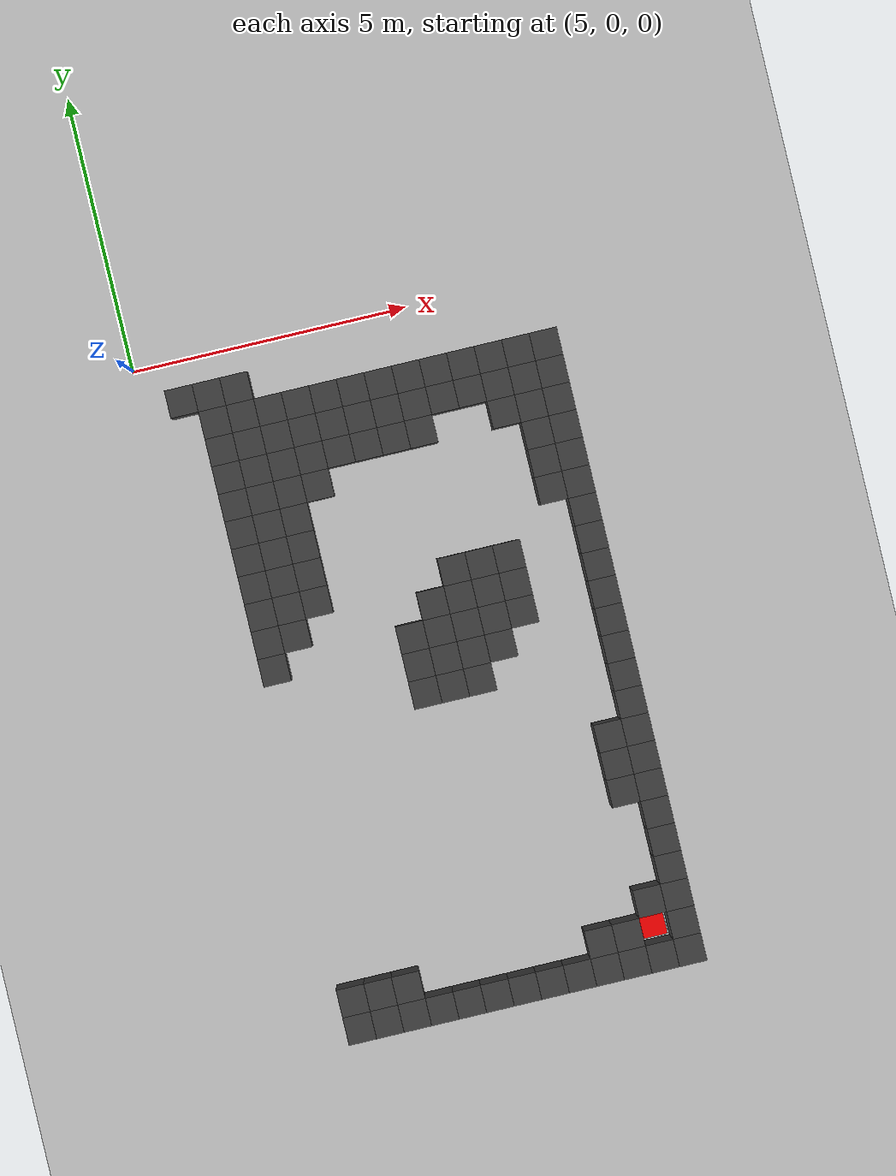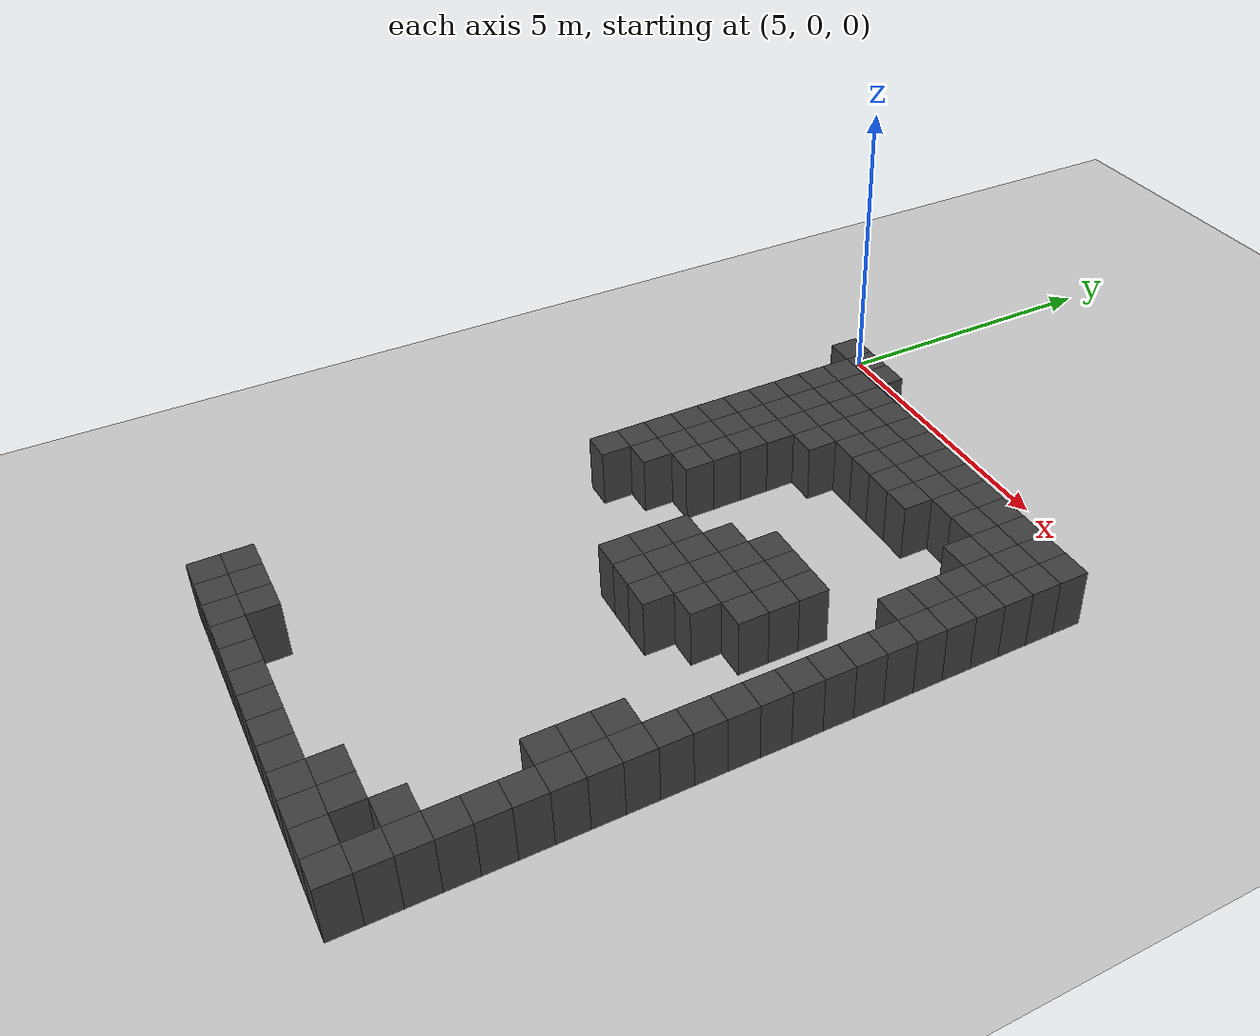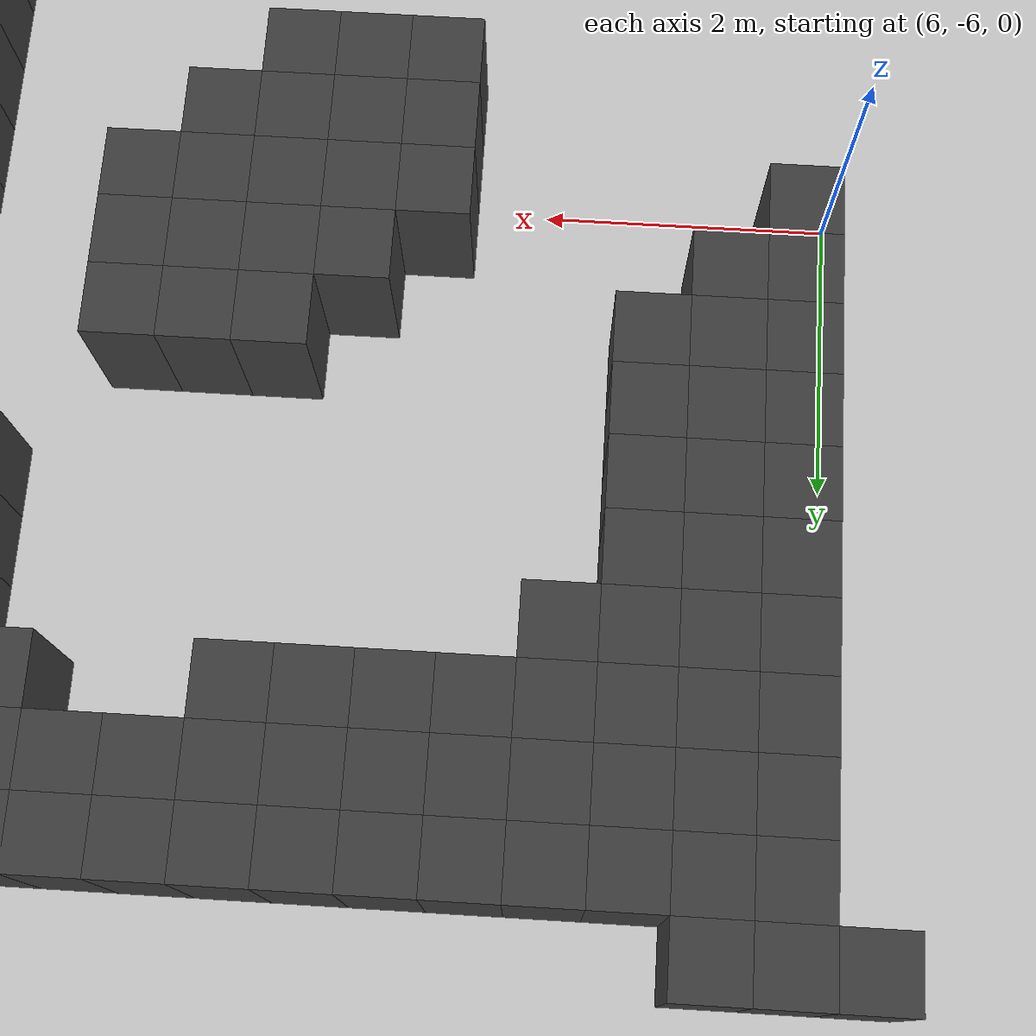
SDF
<sdf version="1.7">
 <world name="map_7972">
  <model name="ground_plane">
   <static>true</static>
   <link name="link">
    <collision name="collision">
     <geometry><plane><normal>0 0 1</normal><size>200 200</size></plane></geometry>
    </collision>
    <visual name="visual">
     <geometry><plane><normal>0 0 1</normal><size>200 200</size></plane></geometry>
     <material><ambient>0.8 0.8 0.8 1</ambient><diffuse>0.8 0.8 0.8 1</diffuse></material>
    </visual>
   </link>
  </model>
  <model name="maze_environment">
   <static>true</static>
   <link name="wall_441">
    <pose>5.750 -0.750 0.500 0 0 0</pose>
    <collision name="col"><geometry><box><size>0.5 0.5 1.0</size></box></geometry></collision>
    <visual name="vis">
     <geometry><box><size>0.5 0.5 1.0</size></box></geometry>
     <material><ambient>0.15 0.15 0.15 1</ambient><diffuse>0.25 0.25 0.25 1</diffuse></material>
    </visual>
   </link>
   <link name="wall_442">
    <pose>6.250 -0.750 0.500 0 0 0</pose>
    <collision name="col"><geometry><box><size>0.5 0.5 1.0</size></box></geometry></collision>
    <visual name="vis">
     <geometry><box><size>0.5 0.5 1.0</size></box></geometry>
     <material><ambient>0.15 0.15 0.15 1</ambient><diffuse>0.25 0.25 0.25 1</diffuse></material>
    </visual>
   </link>
   <link name="wall_443">
    <pose>6.750 -0.750 0.500 0 0 0</pose>
    <collision name="col"><geometry><box><size>0.5 0.5 1.0</size></box></geometry></collision>
    <visual name="vis">
     <geometry><box><size>0.5 0.5 1.0</size></box></geometry>
     <material><ambient>0.15 0.15 0.15 1</ambient><diffuse>0.25 0.25 0.25 1</diffuse></material>
    </visual>
   </link>
   <link name="wall_472">
    <pose>6.250 -1.250 0.500 0 0 0</pose>
    <collision name="col"><geometry><box><size>0.5 0.5 1.0</size></box></geometry></collision>
    <visual name="vis">
     <geometry><box><size>0.5 0.5 1.0</size></box></geometry>
     <material><ambient>0.15 0.15 0.15 1</ambient><diffuse>0.25 0.25 0.25 1</diffuse></material>
    </visual>
   </link>
   <link name="wall_473">
    <pose>6.750 -1.250 0.500 0 0 0</pose>
    <collision name="col"><geometry><box><size>0.5 0.5 1.0</size></box></geometry></collision>
    <visual name="vis">
     <geometry><box><size>0.5 0.5 1.0</size></box></geometry>
     <material><ambient>0.15 0.15 0.15 1</ambient><diffuse>0.25 0.25 0.25 1</diffuse></material>
    </visual>
   </link>
   <link name="wall_474">
    <pose>7.250 -1.250 0.500 0 0 0</pose>
    <collision name="col"><geometry><box><size>0.5 0.5 1.0</size></box></geometry></collision>
    <visual name="vis">
     <geometry><box><size>0.5 0.5 1.0</size></box></geometry>
     <material><ambient>0.15 0.15 0.15 1</ambient><diffuse>0.25 0.25 0.25 1</diffuse></material>
    </visual>
   </link>
   <link name="wall_475">
    <pose>7.750 -1.250 0.500 0 0 0</pose>
    <collision name="col"><geometry><box><size>0.5 0.5 1.0</size></box></geometry></collision>
    <visual name="vis">
     <geometry><box><size>0.5 0.5 1.0</size></box></geometry>
     <material><ambient>0.15 0.15 0.15 1</ambient><diffuse>0.25 0.25 0.25 1</diffuse></material>
    </visual>
   </link>
   <link name="wall_476">
    <pose>8.250 -1.250 0.500 0 0 0</pose>
    <collision name="col"><geometry><box><size>0.5 0.5 1.0</size></box></geometry></collision>
    <visual name="vis">
     <geometry><box><size>0.5 0.5 1.0</size></box></geometry>
     <material><ambient>0.15 0.15 0.15 1</ambient><diffuse>0.25 0.25 0.25 1</diffuse></material>
    </visual>
   </link>
   <link name="wall_477">
    <pose>8.750 -1.250 0.500 0 0 0</pose>
    <collision name="col"><geometry><box><size>0.5 0.5 1.0</size></box></geometry></collision>
    <visual name="vis">
     <geometry><box><size>0.5 0.5 1.0</size></box></geometry>
     <material><ambient>0.15 0.15 0.15 1</ambient><diffuse>0.25 0.25 0.25 1</diffuse></material>
    </visual>
   </link>
   <link name="wall_478">
    <pose>9.250 -1.250 0.500 0 0 0</pose>
    <collision name="col"><geometry><box><size>0.5 0.5 1.0</size></box></geometry></collision>
    <visual name="vis">
     <geometry><box><size>0.5 0.5 1.0</size></box></geometry>
     <material><ambient>0.15 0.15 0.15 1</ambient><diffuse>0.25 0.25 0.25 1</diffuse></material>
    </visual>
   </link>
   <link name="wall_479">
    <pose>9.750 -1.250 0.500 0 0 0</pose>
    <collision name="col"><geometry><box><size>0.5 0.5 1.0</size></box></geometry></collision>
    <visual name="vis">
     <geometry><box><size>0.5 0.5 1.0</size></box></geometry>
     <material><ambient>0.15 0.15 0.15 1</ambient><diffuse>0.25 0.25 0.25 1</diffuse></material>
    </visual>
   </link>
   <link name="wall_480">
    <pose>10.250 -1.250 0.500 0 0 0</pose>
    <collision name="col"><geometry><box><size>0.5 0.5 1.0</size></box></geometry></collision>
    <visual name="vis">
     <geometry><box><size>0.5 0.5 1.0</size></box></geometry>
     <material><ambient>0.15 0.15 0.15 1</ambient><diffuse>0.25 0.25 0.25 1</diffuse></material>
    </visual>
   </link>
   <link name="wall_481">
    <pose>10.750 -1.250 0.500 0 0 0</pose>
    <collision name="col"><geometry><box><size>0.5 0.5 1.0</size></box></geometry></collision>
    <visual name="vis">
     <geometry><box><size>0.5 0.5 1.0</size></box></geometry>
     <material><ambient>0.15 0.15 0.15 1</ambient><diffuse>0.25 0.25 0.25 1</diffuse></material>
    </visual>
   </link>
   <link name="wall_482">
    <pose>11.250 -1.250 0.500 0 0 0</pose>
    <collision name="col"><geometry><box><size>0.5 0.5 1.0</size></box></geometry></collision>
    <visual name="vis">
     <geometry><box><size>0.5 0.5 1.0</size></box></geometry>
     <material><ambient>0.15 0.15 0.15 1</ambient><diffuse>0.25 0.25 0.25 1</diffuse></material>
    </visual>
   </link>
   <link name="wall_483">
    <pose>11.750 -1.250 0.500 0 0 0</pose>
    <collision name="col"><geometry><box><size>0.5 0.5 1.0</size></box></geometry></collision>
    <visual name="vis">
     <geometry><box><size>0.5 0.5 1.0</size></box></geometry>
     <material><ambient>0.15 0.15 0.15 1</ambient><diffuse>0.25 0.25 0.25 1</diffuse></material>
    </visual>
   </link>
   <link name="wall_484">
    <pose>12.250 -1.250 0.500 0 0 0</pose>
    <collision name="col"><geometry><box><size>0.5 0.5 1.0</size></box></geometry></collision>
    <visual name="vis">
     <geometry><box><size>0.5 0.5 1.0</size></box></geometry>
     <material><ambient>0.15 0.15 0.15 1</ambient><diffuse>0.25 0.25 0.25 1</diffuse></material>
    </visual>
   </link>
   <link name="wall_501">
    <pose>6.250 -1.750 0.500 0 0 0</pose>
    <collision name="col"><geometry><box><size>0.5 0.5 1.0</size></box></geometry></collision>
    <visual name="vis">
     <geometry><box><size>0.5 0.5 1.0</size></box></geometry>
     <material><ambient>0.15 0.15 0.15 1</ambient><diffuse>0.25 0.25 0.25 1</diffuse></material>
    </visual>
   </link>
   <link name="wall_502">
    <pose>6.750 -1.750 0.500 0 0 0</pose>
    <collision name="col"><geometry><box><size>0.5 0.5 1.0</size></box></geometry></collision>
    <visual name="vis">
     <geometry><box><size>0.5 0.5 1.0</size></box></geometry>
     <material><ambient>0.15 0.15 0.15 1</ambient><diffuse>0.25 0.25 0.25 1</diffuse></material>
    </visual>
   </link>
   <link name="wall_503">
    <pose>7.250 -1.750 0.500 0 0 0</pose>
    <collision name="col"><geometry><box><size>0.5 0.5 1.0</size></box></geometry></collision>
    <visual name="vis">
     <geometry><box><size>0.5 0.5 1.0</size></box></geometry>
     <material><ambient>0.15 0.15 0.15 1</ambient><diffuse>0.25 0.25 0.25 1</diffuse></material>
    </visual>
   </link>
   <link name="wall_504">
    <pose>7.750 -1.750 0.500 0 0 0</pose>
    <collision name="col"><geometry><box><size>0.5 0.5 1.0</size></box></geometry></collision>
    <visual name="vis">
     <geometry><box><size>0.5 0.5 1.0</size></box></geometry>
     <material><ambient>0.15 0.15 0.15 1</ambient><diffuse>0.25 0.25 0.25 1</diffuse></material>
    </visual>
   </link>
   <link name="wall_505">
    <pose>8.250 -1.750 0.500 0 0 0</pose>
    <collision name="col"><geometry><box><size>0.5 0.5 1.0</size></box></geometry></collision>
    <visual name="vis">
     <geometry><box><size>0.5 0.5 1.0</size></box></geometry>
     <material><ambient>0.15 0.15 0.15 1</ambient><diffuse>0.25 0.25 0.25 1</diffuse></material>
    </visual>
   </link>
   <link name="wall_506">
    <pose>8.750 -1.750 0.500 0 0 0</pose>
    <collision name="col"><geometry><box><size>0.5 0.5 1.0</size></box></geometry></collision>
    <visual name="vis">
     <geometry><box><size>0.5 0.5 1.0</size></box></geometry>
     <material><ambient>0.15 0.15 0.15 1</ambient><diffuse>0.25 0.25 0.25 1</diffuse></material>
    </visual>
   </link>
   <link name="wall_507">
    <pose>9.250 -1.750 0.500 0 0 0</pose>
    <collision name="col"><geometry><box><size>0.5 0.5 1.0</size></box></geometry></collision>
    <visual name="vis">
     <geometry><box><size>0.5 0.5 1.0</size></box></geometry>
     <material><ambient>0.15 0.15 0.15 1</ambient><diffuse>0.25 0.25 0.25 1</diffuse></material>
    </visual>
   </link>
   <link name="wall_508">
    <pose>9.750 -1.750 0.500 0 0 0</pose>
    <collision name="col"><geometry><box><size>0.5 0.5 1.0</size></box></geometry></collision>
    <visual name="vis">
     <geometry><box><size>0.5 0.5 1.0</size></box></geometry>
     <material><ambient>0.15 0.15 0.15 1</ambient><diffuse>0.25 0.25 0.25 1</diffuse></material>
    </visual>
   </link>
   <link name="wall_509">
    <pose>10.250 -1.750 0.500 0 0 0</pose>
    <collision name="col"><geometry><box><size>0.5 0.5 1.0</size></box></geometry></collision>
    <visual name="vis">
     <geometry><box><size>0.5 0.5 1.0</size></box></geometry>
     <material><ambient>0.15 0.15 0.15 1</ambient><diffuse>0.25 0.25 0.25 1</diffuse></material>
    </visual>
   </link>
   <link name="wall_510">
    <pose>10.750 -1.750 0.500 0 0 0</pose>
    <collision name="col"><geometry><box><size>0.5 0.5 1.0</size></box></geometry></collision>
    <visual name="vis">
     <geometry><box><size>0.5 0.5 1.0</size></box></geometry>
     <material><ambient>0.15 0.15 0.15 1</ambient><diffuse>0.25 0.25 0.25 1</diffuse></material>
    </visual>
   </link>
   <link name="wall_511">
    <pose>11.250 -1.750 0.500 0 0 0</pose>
    <collision name="col"><geometry><box><size>0.5 0.5 1.0</size></box></geometry></collision>
    <visual name="vis">
     <geometry><box><size>0.5 0.5 1.0</size></box></geometry>
     <material><ambient>0.15 0.15 0.15 1</ambient><diffuse>0.25 0.25 0.25 1</diffuse></material>
    </visual>
   </link>
   <link name="wall_512">
    <pose>11.750 -1.750 0.500 0 0 0</pose>
    <collision name="col"><geometry><box><size>0.5 0.5 1.0</size></box></geometry></collision>
    <visual name="vis">
     <geometry><box><size>0.5 0.5 1.0</size></box></geometry>
     <material><ambient>0.15 0.15 0.15 1</ambient><diffuse>0.25 0.25 0.25 1</diffuse></material>
    </visual>
   </link>
   <link name="wall_513">
    <pose>12.250 -1.750 0.500 0 0 0</pose>
    <collision name="col"><geometry><box><size>0.5 0.5 1.0</size></box></geometry></collision>
    <visual name="vis">
     <geometry><box><size>0.5 0.5 1.0</size></box></geometry>
     <material><ambient>0.15 0.15 0.15 1</ambient><diffuse>0.25 0.25 0.25 1</diffuse></material>
    </visual>
   </link>
   <link name="wall_530">
    <pose>6.250 -2.250 0.500 0 0 0</pose>
    <collision name="col"><geometry><box><size>0.5 0.5 1.0</size></box></geometry></collision>
    <visual name="vis">
     <geometry><box><size>0.5 0.5 1.0</size></box></geometry>
     <material><ambient>0.15 0.15 0.15 1</ambient><diffuse>0.25 0.25 0.25 1</diffuse></material>
    </visual>
   </link>
   <link name="wall_531">
    <pose>6.750 -2.250 0.500 0 0 0</pose>
    <collision name="col"><geometry><box><size>0.5 0.5 1.0</size></box></geometry></collision>
    <visual name="vis">
     <geometry><box><size>0.5 0.5 1.0</size></box></geometry>
     <material><ambient>0.15 0.15 0.15 1</ambient><diffuse>0.25 0.25 0.25 1</diffuse></material>
    </visual>
   </link>
   <link name="wall_532">
    <pose>7.250 -2.250 0.500 0 0 0</pose>
    <collision name="col"><geometry><box><size>0.5 0.5 1.0</size></box></geometry></collision>
    <visual name="vis">
     <geometry><box><size>0.5 0.5 1.0</size></box></geometry>
     <material><ambient>0.15 0.15 0.15 1</ambient><diffuse>0.25 0.25 0.25 1</diffuse></material>
    </visual>
   </link>
   <link name="wall_533">
    <pose>7.750 -2.250 0.500 0 0 0</pose>
    <collision name="col"><geometry><box><size>0.5 0.5 1.0</size></box></geometry></collision>
    <visual name="vis">
     <geometry><box><size>0.5 0.5 1.0</size></box></geometry>
     <material><ambient>0.15 0.15 0.15 1</ambient><diffuse>0.25 0.25 0.25 1</diffuse></material>
    </visual>
   </link>
   <link name="wall_534">
    <pose>8.250 -2.250 0.500 0 0 0</pose>
    <collision name="col"><geometry><box><size>0.5 0.5 1.0</size></box></geometry></collision>
    <visual name="vis">
     <geometry><box><size>0.5 0.5 1.0</size></box></geometry>
     <material><ambient>0.15 0.15 0.15 1</ambient><diffuse>0.25 0.25 0.25 1</diffuse></material>
    </visual>
   </link>
   <link name="wall_535">
    <pose>8.750 -2.250 0.500 0 0 0</pose>
    <collision name="col"><geometry><box><size>0.5 0.5 1.0</size></box></geometry></collision>
    <visual name="vis">
     <geometry><box><size>0.5 0.5 1.0</size></box></geometry>
     <material><ambient>0.15 0.15 0.15 1</ambient><diffuse>0.25 0.25 0.25 1</diffuse></material>
    </visual>
   </link>
   <link name="wall_536">
    <pose>9.250 -2.250 0.500 0 0 0</pose>
    <collision name="col"><geometry><box><size>0.5 0.5 1.0</size></box></geometry></collision>
    <visual name="vis">
     <geometry><box><size>0.5 0.5 1.0</size></box></geometry>
     <material><ambient>0.15 0.15 0.15 1</ambient><diffuse>0.25 0.25 0.25 1</diffuse></material>
    </visual>
   </link>
   <link name="wall_537">
    <pose>9.750 -2.250 0.500 0 0 0</pose>
    <collision name="col"><geometry><box><size>0.5 0.5 1.0</size></box></geometry></collision>
    <visual name="vis">
     <geometry><box><size>0.5 0.5 1.0</size></box></geometry>
     <material><ambient>0.15 0.15 0.15 1</ambient><diffuse>0.25 0.25 0.25 1</diffuse></material>
    </visual>
   </link>
   <link name="wall_538">
    <pose>11.250 -2.250 0.500 0 0 0</pose>
    <collision name="col"><geometry><box><size>0.5 0.5 1.0</size></box></geometry></collision>
    <visual name="vis">
     <geometry><box><size>0.5 0.5 1.0</size></box></geometry>
     <material><ambient>0.15 0.15 0.15 1</ambient><diffuse>0.25 0.25 0.25 1</diffuse></material>
    </visual>
   </link>
   <link name="wall_539">
    <pose>11.750 -2.250 0.500 0 0 0</pose>
    <collision name="col"><geometry><box><size>0.5 0.5 1.0</size></box></geometry></collision>
    <visual name="vis">
     <geometry><box><size>0.5 0.5 1.0</size></box></geometry>
     <material><ambient>0.15 0.15 0.15 1</ambient><diffuse>0.25 0.25 0.25 1</diffuse></material>
    </visual>
   </link>
   <link name="wall_540">
    <pose>12.250 -2.250 0.500 0 0 0</pose>
    <collision name="col"><geometry><box><size>0.5 0.5 1.0</size></box></geometry></collision>
    <visual name="vis">
     <geometry><box><size>0.5 0.5 1.0</size></box></geometry>
     <material><ambient>0.15 0.15 0.15 1</ambient><diffuse>0.25 0.25 0.25 1</diffuse></material>
    </visual>
   </link>
   <link name="wall_560">
    <pose>6.250 -2.750 0.500 0 0 0</pose>
    <collision name="col"><geometry><box><size>0.5 0.5 1.0</size></box></geometry></collision>
    <visual name="vis">
     <geometry><box><size>0.5 0.5 1.0</size></box></geometry>
     <material><ambient>0.15 0.15 0.15 1</ambient><diffuse>0.25 0.25 0.25 1</diffuse></material>
    </visual>
   </link>
   <link name="wall_561">
    <pose>6.750 -2.750 0.500 0 0 0</pose>
    <collision name="col"><geometry><box><size>0.5 0.5 1.0</size></box></geometry></collision>
    <visual name="vis">
     <geometry><box><size>0.5 0.5 1.0</size></box></geometry>
     <material><ambient>0.15 0.15 0.15 1</ambient><diffuse>0.25 0.25 0.25 1</diffuse></material>
    </visual>
   </link>
   <link name="wall_562">
    <pose>7.250 -2.750 0.500 0 0 0</pose>
    <collision name="col"><geometry><box><size>0.5 0.5 1.0</size></box></geometry></collision>
    <visual name="vis">
     <geometry><box><size>0.5 0.5 1.0</size></box></geometry>
     <material><ambient>0.15 0.15 0.15 1</ambient><diffuse>0.25 0.25 0.25 1</diffuse></material>
    </visual>
   </link>
   <link name="wall_563">
    <pose>7.750 -2.750 0.500 0 0 0</pose>
    <collision name="col"><geometry><box><size>0.5 0.5 1.0</size></box></geometry></collision>
    <visual name="vis">
     <geometry><box><size>0.5 0.5 1.0</size></box></geometry>
     <material><ambient>0.15 0.15 0.15 1</ambient><diffuse>0.25 0.25 0.25 1</diffuse></material>
    </visual>
   </link>
   <link name="wall_564">
    <pose>11.750 -2.750 0.500 0 0 0</pose>
    <collision name="col"><geometry><box><size>0.5 0.5 1.0</size></box></geometry></collision>
    <visual name="vis">
     <geometry><box><size>0.5 0.5 1.0</size></box></geometry>
     <material><ambient>0.15 0.15 0.15 1</ambient><diffuse>0.25 0.25 0.25 1</diffuse></material>
    </visual>
   </link>
   <link name="wall_565">
    <pose>12.250 -2.750 0.500 0 0 0</pose>
    <collision name="col"><geometry><box><size>0.5 0.5 1.0</size></box></geometry></collision>
    <visual name="vis">
     <geometry><box><size>0.5 0.5 1.0</size></box></geometry>
     <material><ambient>0.15 0.15 0.15 1</ambient><diffuse>0.25 0.25 0.25 1</diffuse></material>
    </visual>
   </link>
   <link name="wall_585">
    <pose>6.250 -3.250 0.500 0 0 0</pose>
    <collision name="col"><geometry><box><size>0.5 0.5 1.0</size></box></geometry></collision>
    <visual name="vis">
     <geometry><box><size>0.5 0.5 1.0</size></box></geometry>
     <material><ambient>0.15 0.15 0.15 1</ambient><diffuse>0.25 0.25 0.25 1</diffuse></material>
    </visual>
   </link>
   <link name="wall_586">
    <pose>6.750 -3.250 0.500 0 0 0</pose>
    <collision name="col"><geometry><box><size>0.5 0.5 1.0</size></box></geometry></collision>
    <visual name="vis">
     <geometry><box><size>0.5 0.5 1.0</size></box></geometry>
     <material><ambient>0.15 0.15 0.15 1</ambient><diffuse>0.25 0.25 0.25 1</diffuse></material>
    </visual>
   </link>
   <link name="wall_587">
    <pose>7.250 -3.250 0.500 0 0 0</pose>
    <collision name="col"><geometry><box><size>0.5 0.5 1.0</size></box></geometry></collision>
    <visual name="vis">
     <geometry><box><size>0.5 0.5 1.0</size></box></geometry>
     <material><ambient>0.15 0.15 0.15 1</ambient><diffuse>0.25 0.25 0.25 1</diffuse></material>
    </visual>
   </link>
   <link name="wall_588">
    <pose>11.750 -3.250 0.500 0 0 0</pose>
    <collision name="col"><geometry><box><size>0.5 0.5 1.0</size></box></geometry></collision>
    <visual name="vis">
     <geometry><box><size>0.5 0.5 1.0</size></box></geometry>
     <material><ambient>0.15 0.15 0.15 1</ambient><diffuse>0.25 0.25 0.25 1</diffuse></material>
    </visual>
   </link>
   <link name="wall_589">
    <pose>12.250 -3.250 0.500 0 0 0</pose>
    <collision name="col"><geometry><box><size>0.5 0.5 1.0</size></box></geometry></collision>
    <visual name="vis">
     <geometry><box><size>0.5 0.5 1.0</size></box></geometry>
     <material><ambient>0.15 0.15 0.15 1</ambient><diffuse>0.25 0.25 0.25 1</diffuse></material>
    </visual>
   </link>
   <link name="wall_604">
    <pose>6.250 -3.750 0.500 0 0 0</pose>
    <collision name="col"><geometry><box><size>0.5 0.5 1.0</size></box></geometry></collision>
    <visual name="vis">
     <geometry><box><size>0.5 0.5 1.0</size></box></geometry>
     <material><ambient>0.15 0.15 0.15 1</ambient><diffuse>0.25 0.25 0.25 1</diffuse></material>
    </visual>
   </link>
   <link name="wall_605">
    <pose>6.750 -3.750 0.500 0 0 0</pose>
    <collision name="col"><geometry><box><size>0.5 0.5 1.0</size></box></geometry></collision>
    <visual name="vis">
     <geometry><box><size>0.5 0.5 1.0</size></box></geometry>
     <material><ambient>0.15 0.15 0.15 1</ambient><diffuse>0.25 0.25 0.25 1</diffuse></material>
    </visual>
   </link>
   <link name="wall_606">
    <pose>7.250 -3.750 0.500 0 0 0</pose>
    <collision name="col"><geometry><box><size>0.5 0.5 1.0</size></box></geometry></collision>
    <visual name="vis">
     <geometry><box><size>0.5 0.5 1.0</size></box></geometry>
     <material><ambient>0.15 0.15 0.15 1</ambient><diffuse>0.25 0.25 0.25 1</diffuse></material>
    </visual>
   </link>
   <link name="wall_607">
    <pose>11.750 -3.750 0.500 0 0 0</pose>
    <collision name="col"><geometry><box><size>0.5 0.5 1.0</size></box></geometry></collision>
    <visual name="vis">
     <geometry><box><size>0.5 0.5 1.0</size></box></geometry>
     <material><ambient>0.15 0.15 0.15 1</ambient><diffuse>0.25 0.25 0.25 1</diffuse></material>
    </visual>
   </link>
   <link name="wall_608">
    <pose>12.250 -3.750 0.500 0 0 0</pose>
    <collision name="col"><geometry><box><size>0.5 0.5 1.0</size></box></geometry></collision>
    <visual name="vis">
     <geometry><box><size>0.5 0.5 1.0</size></box></geometry>
     <material><ambient>0.15 0.15 0.15 1</ambient><diffuse>0.25 0.25 0.25 1</diffuse></material>
    </visual>
   </link>
   <link name="wall_620">
    <pose>6.250 -4.250 0.500 0 0 0</pose>
    <collision name="col"><geometry><box><size>0.5 0.5 1.0</size></box></geometry></collision>
    <visual name="vis">
     <geometry><box><size>0.5 0.5 1.0</size></box></geometry>
     <material><ambient>0.15 0.15 0.15 1</ambient><diffuse>0.25 0.25 0.25 1</diffuse></material>
    </visual>
   </link>
   <link name="wall_621">
    <pose>6.750 -4.250 0.500 0 0 0</pose>
    <collision name="col"><geometry><box><size>0.5 0.5 1.0</size></box></geometry></collision>
    <visual name="vis">
     <geometry><box><size>0.5 0.5 1.0</size></box></geometry>
     <material><ambient>0.15 0.15 0.15 1</ambient><diffuse>0.25 0.25 0.25 1</diffuse></material>
    </visual>
   </link>
   <link name="wall_622">
    <pose>7.250 -4.250 0.500 0 0 0</pose>
    <collision name="col"><geometry><box><size>0.5 0.5 1.0</size></box></geometry></collision>
    <visual name="vis">
     <geometry><box><size>0.5 0.5 1.0</size></box></geometry>
     <material><ambient>0.15 0.15 0.15 1</ambient><diffuse>0.25 0.25 0.25 1</diffuse></material>
    </visual>
   </link>
   <link name="wall_623">
    <pose>12.250 -4.250 0.500 0 0 0</pose>
    <collision name="col"><geometry><box><size>0.5 0.5 1.0</size></box></geometry></collision>
    <visual name="vis">
     <geometry><box><size>0.5 0.5 1.0</size></box></geometry>
     <material><ambient>0.15 0.15 0.15 1</ambient><diffuse>0.25 0.25 0.25 1</diffuse></material>
    </visual>
   </link>
   <link name="wall_632">
    <pose>6.250 -4.750 0.500 0 0 0</pose>
    <collision name="col"><geometry><box><size>0.5 0.5 1.0</size></box></geometry></collision>
    <visual name="vis">
     <geometry><box><size>0.5 0.5 1.0</size></box></geometry>
     <material><ambient>0.15 0.15 0.15 1</ambient><diffuse>0.25 0.25 0.25 1</diffuse></material>
    </visual>
   </link>
   <link name="wall_633">
    <pose>6.750 -4.750 0.500 0 0 0</pose>
    <collision name="col"><geometry><box><size>0.5 0.5 1.0</size></box></geometry></collision>
    <visual name="vis">
     <geometry><box><size>0.5 0.5 1.0</size></box></geometry>
     <material><ambient>0.15 0.15 0.15 1</ambient><diffuse>0.25 0.25 0.25 1</diffuse></material>
    </visual>
   </link>
   <link name="wall_634">
    <pose>7.250 -4.750 0.500 0 0 0</pose>
    <collision name="col"><geometry><box><size>0.5 0.5 1.0</size></box></geometry></collision>
    <visual name="vis">
     <geometry><box><size>0.5 0.5 1.0</size></box></geometry>
     <material><ambient>0.15 0.15 0.15 1</ambient><diffuse>0.25 0.25 0.25 1</diffuse></material>
    </visual>
   </link>
   <link name="wall_635">
    <pose>9.750 -4.750 0.500 0 0 0</pose>
    <collision name="col"><geometry><box><size>0.5 0.5 1.0</size></box></geometry></collision>
    <visual name="vis">
     <geometry><box><size>0.5 0.5 1.0</size></box></geometry>
     <material><ambient>0.15 0.15 0.15 1</ambient><diffuse>0.25 0.25 0.25 1</diffuse></material>
    </visual>
   </link>
   <link name="wall_636">
    <pose>10.250 -4.750 0.500 0 0 0</pose>
    <collision name="col"><geometry><box><size>0.5 0.5 1.0</size></box></geometry></collision>
    <visual name="vis">
     <geometry><box><size>0.5 0.5 1.0</size></box></geometry>
     <material><ambient>0.15 0.15 0.15 1</ambient><diffuse>0.25 0.25 0.25 1</diffuse></material>
    </visual>
   </link>
   <link name="wall_637">
    <pose>10.750 -4.750 0.500 0 0 0</pose>
    <collision name="col"><geometry><box><size>0.5 0.5 1.0</size></box></geometry></collision>
    <visual name="vis">
     <geometry><box><size>0.5 0.5 1.0</size></box></geometry>
     <material><ambient>0.15 0.15 0.15 1</ambient><diffuse>0.25 0.25 0.25 1</diffuse></material>
    </visual>
   </link>
   <link name="wall_638">
    <pose>12.250 -4.750 0.500 0 0 0</pose>
    <collision name="col"><geometry><box><size>0.5 0.5 1.0</size></box></geometry></collision>
    <visual name="vis">
     <geometry><box><size>0.5 0.5 1.0</size></box></geometry>
     <material><ambient>0.15 0.15 0.15 1</ambient><diffuse>0.25 0.25 0.25 1</diffuse></material>
    </visual>
   </link>
   <link name="wall_651">
    <pose>6.250 -5.250 0.500 0 0 0</pose>
    <collision name="col"><geometry><box><size>0.5 0.5 1.0</size></box></geometry></collision>
    <visual name="vis">
     <geometry><box><size>0.5 0.5 1.0</size></box></geometry>
     <material><ambient>0.15 0.15 0.15 1</ambient><diffuse>0.25 0.25 0.25 1</diffuse></material>
    </visual>
   </link>
   <link name="wall_652">
    <pose>6.750 -5.250 0.500 0 0 0</pose>
    <collision name="col"><geometry><box><size>0.5 0.5 1.0</size></box></geometry></collision>
    <visual name="vis">
     <geometry><box><size>0.5 0.5 1.0</size></box></geometry>
     <material><ambient>0.15 0.15 0.15 1</ambient><diffuse>0.25 0.25 0.25 1</diffuse></material>
    </visual>
   </link>
   <link name="wall_653">
    <pose>9.250 -5.250 0.500 0 0 0</pose>
    <collision name="col"><geometry><box><size>0.5 0.5 1.0</size></box></geometry></collision>
    <visual name="vis">
     <geometry><box><size>0.5 0.5 1.0</size></box></geometry>
     <material><ambient>0.15 0.15 0.15 1</ambient><diffuse>0.25 0.25 0.25 1</diffuse></material>
    </visual>
   </link>
   <link name="wall_654">
    <pose>9.750 -5.250 0.500 0 0 0</pose>
    <collision name="col"><geometry><box><size>0.5 0.5 1.0</size></box></geometry></collision>
    <visual name="vis">
     <geometry><box><size>0.5 0.5 1.0</size></box></geometry>
     <material><ambient>0.15 0.15 0.15 1</ambient><diffuse>0.25 0.25 0.25 1</diffuse></material>
    </visual>
   </link>
   <link name="wall_655">
    <pose>10.250 -5.250 0.500 0 0 0</pose>
    <collision name="col"><geometry><box><size>0.5 0.5 1.0</size></box></geometry></collision>
    <visual name="vis">
     <geometry><box><size>0.5 0.5 1.0</size></box></geometry>
     <material><ambient>0.15 0.15 0.15 1</ambient><diffuse>0.25 0.25 0.25 1</diffuse></material>
    </visual>
   </link>
   <link name="wall_656">
    <pose>10.750 -5.250 0.500 0 0 0</pose>
    <collision name="col"><geometry><box><size>0.5 0.5 1.0</size></box></geometry></collision>
    <visual name="vis">
     <geometry><box><size>0.5 0.5 1.0</size></box></geometry>
     <material><ambient>0.15 0.15 0.15 1</ambient><diffuse>0.25 0.25 0.25 1</diffuse></material>
    </visual>
   </link>
   <link name="wall_657">
    <pose>12.250 -5.250 0.500 0 0 0</pose>
    <collision name="col"><geometry><box><size>0.5 0.5 1.0</size></box></geometry></collision>
    <visual name="vis">
     <geometry><box><size>0.5 0.5 1.0</size></box></geometry>
     <material><ambient>0.15 0.15 0.15 1</ambient><diffuse>0.25 0.25 0.25 1</diffuse></material>
    </visual>
   </link>
   <link name="wall_670">
    <pose>6.250 -5.750 0.500 0 0 0</pose>
    <collision name="col"><geometry><box><size>0.5 0.5 1.0</size></box></geometry></collision>
    <visual name="vis">
     <geometry><box><size>0.5 0.5 1.0</size></box></geometry>
     <material><ambient>0.15 0.15 0.15 1</ambient><diffuse>0.25 0.25 0.25 1</diffuse></material>
    </visual>
   </link>
   <link name="wall_671">
    <pose>8.750 -5.750 0.500 0 0 0</pose>
    <collision name="col"><geometry><box><size>0.5 0.5 1.0</size></box></geometry></collision>
    <visual name="vis">
     <geometry><box><size>0.5 0.5 1.0</size></box></geometry>
     <material><ambient>0.15 0.15 0.15 1</ambient><diffuse>0.25 0.25 0.25 1</diffuse></material>
    </visual>
   </link>
   <link name="wall_672">
    <pose>9.250 -5.750 0.500 0 0 0</pose>
    <collision name="col"><geometry><box><size>0.5 0.5 1.0</size></box></geometry></collision>
    <visual name="vis">
     <geometry><box><size>0.5 0.5 1.0</size></box></geometry>
     <material><ambient>0.15 0.15 0.15 1</ambient><diffuse>0.25 0.25 0.25 1</diffuse></material>
    </visual>
   </link>
   <link name="wall_673">
    <pose>9.750 -5.750 0.500 0 0 0</pose>
    <collision name="col"><geometry><box><size>0.5 0.5 1.0</size></box></geometry></collision>
    <visual name="vis">
     <geometry><box><size>0.5 0.5 1.0</size></box></geometry>
     <material><ambient>0.15 0.15 0.15 1</ambient><diffuse>0.25 0.25 0.25 1</diffuse></material>
    </visual>
   </link>
   <link name="wall_674">
    <pose>10.250 -5.750 0.500 0 0 0</pose>
    <collision name="col"><geometry><box><size>0.5 0.5 1.0</size></box></geometry></collision>
    <visual name="vis">
     <geometry><box><size>0.5 0.5 1.0</size></box></geometry>
     <material><ambient>0.15 0.15 0.15 1</ambient><diffuse>0.25 0.25 0.25 1</diffuse></material>
    </visual>
   </link>
   <link name="wall_675">
    <pose>10.750 -5.750 0.500 0 0 0</pose>
    <collision name="col"><geometry><box><size>0.5 0.5 1.0</size></box></geometry></collision>
    <visual name="vis">
     <geometry><box><size>0.5 0.5 1.0</size></box></geometry>
     <material><ambient>0.15 0.15 0.15 1</ambient><diffuse>0.25 0.25 0.25 1</diffuse></material>
    </visual>
   </link>
   <link name="wall_676">
    <pose>12.250 -5.750 0.500 0 0 0</pose>
    <collision name="col"><geometry><box><size>0.5 0.5 1.0</size></box></geometry></collision>
    <visual name="vis">
     <geometry><box><size>0.5 0.5 1.0</size></box></geometry>
     <material><ambient>0.15 0.15 0.15 1</ambient><diffuse>0.25 0.25 0.25 1</diffuse></material>
    </visual>
   </link>
   <link name="wall_690">
    <pose>8.750 -6.250 0.500 0 0 0</pose>
    <collision name="col"><geometry><box><size>0.5 0.5 1.0</size></box></geometry></collision>
    <visual name="vis">
     <geometry><box><size>0.5 0.5 1.0</size></box></geometry>
     <material><ambient>0.15 0.15 0.15 1</ambient><diffuse>0.25 0.25 0.25 1</diffuse></material>
    </visual>
   </link>
   <link name="wall_691">
    <pose>9.250 -6.250 0.500 0 0 0</pose>
    <collision name="col"><geometry><box><size>0.5 0.5 1.0</size></box></geometry></collision>
    <visual name="vis">
     <geometry><box><size>0.5 0.5 1.0</size></box></geometry>
     <material><ambient>0.15 0.15 0.15 1</ambient><diffuse>0.25 0.25 0.25 1</diffuse></material>
    </visual>
   </link>
   <link name="wall_692">
    <pose>9.750 -6.250 0.500 0 0 0</pose>
    <collision name="col"><geometry><box><size>0.5 0.5 1.0</size></box></geometry></collision>
    <visual name="vis">
     <geometry><box><size>0.5 0.5 1.0</size></box></geometry>
     <material><ambient>0.15 0.15 0.15 1</ambient><diffuse>0.25 0.25 0.25 1</diffuse></material>
    </visual>
   </link>
   <link name="wall_693">
    <pose>10.250 -6.250 0.500 0 0 0</pose>
    <collision name="col"><geometry><box><size>0.5 0.5 1.0</size></box></geometry></collision>
    <visual name="vis">
     <geometry><box><size>0.5 0.5 1.0</size></box></geometry>
     <material><ambient>0.15 0.15 0.15 1</ambient><diffuse>0.25 0.25 0.25 1</diffuse></material>
    </visual>
   </link>
   <link name="wall_694">
    <pose>12.250 -6.250 0.500 0 0 0</pose>
    <collision name="col"><geometry><box><size>0.5 0.5 1.0</size></box></geometry></collision>
    <visual name="vis">
     <geometry><box><size>0.5 0.5 1.0</size></box></geometry>
     <material><ambient>0.15 0.15 0.15 1</ambient><diffuse>0.25 0.25 0.25 1</diffuse></material>
    </visual>
   </link>
   <link name="wall_709">
    <pose>8.750 -6.750 0.500 0 0 0</pose>
    <collision name="col"><geometry><box><size>0.5 0.5 1.0</size></box></geometry></collision>
    <visual name="vis">
     <geometry><box><size>0.5 0.5 1.0</size></box></geometry>
     <material><ambient>0.15 0.15 0.15 1</ambient><diffuse>0.25 0.25 0.25 1</diffuse></material>
    </visual>
   </link>
   <link name="wall_710">
    <pose>9.250 -6.750 0.500 0 0 0</pose>
    <collision name="col"><geometry><box><size>0.5 0.5 1.0</size></box></geometry></collision>
    <visual name="vis">
     <geometry><box><size>0.5 0.5 1.0</size></box></geometry>
     <material><ambient>0.15 0.15 0.15 1</ambient><diffuse>0.25 0.25 0.25 1</diffuse></material>
    </visual>
   </link>
   <link name="wall_711">
    <pose>9.750 -6.750 0.500 0 0 0</pose>
    <collision name="col"><geometry><box><size>0.5 0.5 1.0</size></box></geometry></collision>
    <visual name="vis">
     <geometry><box><size>0.5 0.5 1.0</size></box></geometry>
     <material><ambient>0.15 0.15 0.15 1</ambient><diffuse>0.25 0.25 0.25 1</diffuse></material>
    </visual>
   </link>
   <link name="wall_712">
    <pose>12.250 -6.750 0.500 0 0 0</pose>
    <collision name="col"><geometry><box><size>0.5 0.5 1.0</size></box></geometry></collision>
    <visual name="vis">
     <geometry><box><size>0.5 0.5 1.0</size></box></geometry>
     <material><ambient>0.15 0.15 0.15 1</ambient><diffuse>0.25 0.25 0.25 1</diffuse></material>
    </visual>
   </link>
   <link name="wall_725">
    <pose>12.250 -7.250 0.500 0 0 0</pose>
    <collision name="col"><geometry><box><size>0.5 0.5 1.0</size></box></geometry></collision>
    <visual name="vis">
     <geometry><box><size>0.5 0.5 1.0</size></box></geometry>
     <material><ambient>0.15 0.15 0.15 1</ambient><diffuse>0.25 0.25 0.25 1</diffuse></material>
    </visual>
   </link>
   <link name="wall_735">
    <pose>12.250 -7.750 0.500 0 0 0</pose>
    <collision name="col"><geometry><box><size>0.5 0.5 1.0</size></box></geometry></collision>
    <visual name="vis">
     <geometry><box><size>0.5 0.5 1.0</size></box></geometry>
     <material><ambient>0.15 0.15 0.15 1</ambient><diffuse>0.25 0.25 0.25 1</diffuse></material>
    </visual>
   </link>
   <link name="wall_745">
    <pose>11.750 -8.250 0.500 0 0 0</pose>
    <collision name="col"><geometry><box><size>0.5 0.5 1.0</size></box></geometry></collision>
    <visual name="vis">
     <geometry><box><size>0.5 0.5 1.0</size></box></geometry>
     <material><ambient>0.15 0.15 0.15 1</ambient><diffuse>0.25 0.25 0.25 1</diffuse></material>
    </visual>
   </link>
   <link name="wall_746">
    <pose>12.250 -8.250 0.500 0 0 0</pose>
    <collision name="col"><geometry><box><size>0.5 0.5 1.0</size></box></geometry></collision>
    <visual name="vis">
     <geometry><box><size>0.5 0.5 1.0</size></box></geometry>
     <material><ambient>0.15 0.15 0.15 1</ambient><diffuse>0.25 0.25 0.25 1</diffuse></material>
    </visual>
   </link>
   <link name="wall_753">
    <pose>11.750 -8.750 0.500 0 0 0</pose>
    <collision name="col"><geometry><box><size>0.5 0.5 1.0</size></box></geometry></collision>
    <visual name="vis">
     <geometry><box><size>0.5 0.5 1.0</size></box></geometry>
     <material><ambient>0.15 0.15 0.15 1</ambient><diffuse>0.25 0.25 0.25 1</diffuse></material>
    </visual>
   </link>
   <link name="wall_754">
    <pose>12.250 -8.750 0.500 0 0 0</pose>
    <collision name="col"><geometry><box><size>0.5 0.5 1.0</size></box></geometry></collision>
    <visual name="vis">
     <geometry><box><size>0.5 0.5 1.0</size></box></geometry>
     <material><ambient>0.15 0.15 0.15 1</ambient><diffuse>0.25 0.25 0.25 1</diffuse></material>
    </visual>
   </link>
   <link name="wall_760">
    <pose>11.750 -9.250 0.500 0 0 0</pose>
    <collision name="col"><geometry><box><size>0.5 0.5 1.0</size></box></geometry></collision>
    <visual name="vis">
     <geometry><box><size>0.5 0.5 1.0</size></box></geometry>
     <material><ambient>0.15 0.15 0.15 1</ambient><diffuse>0.25 0.25 0.25 1</diffuse></material>
    </visual>
   </link>
   <link name="wall_761">
    <pose>12.250 -9.250 0.500 0 0 0</pose>
    <collision name="col"><geometry><box><size>0.5 0.5 1.0</size></box></geometry></collision>
    <visual name="vis">
     <geometry><box><size>0.5 0.5 1.0</size></box></geometry>
     <material><ambient>0.15 0.15 0.15 1</ambient><diffuse>0.25 0.25 0.25 1</diffuse></material>
    </visual>
   </link>
   <link name="wall_765">
    <pose>12.250 -9.750 0.500 0 0 0</pose>
    <collision name="col"><geometry><box><size>0.5 0.5 1.0</size></box></geometry></collision>
    <visual name="vis">
     <geometry><box><size>0.5 0.5 1.0</size></box></geometry>
     <material><ambient>0.15 0.15 0.15 1</ambient><diffuse>0.25 0.25 0.25 1</diffuse></material>
    </visual>
   </link>
   <link name="wall_768">
    <pose>12.250 -10.250 0.500 0 0 0</pose>
    <collision name="col"><geometry><box><size>0.5 0.5 1.0</size></box></geometry></collision>
    <visual name="vis">
     <geometry><box><size>0.5 0.5 1.0</size></box></geometry>
     <material><ambient>0.15 0.15 0.15 1</ambient><diffuse>0.25 0.25 0.25 1</diffuse></material>
    </visual>
   </link>
   <link name="wall_772">
    <pose>12.250 -10.750 0.500 0 0 0</pose>
    <collision name="col"><geometry><box><size>0.5 0.5 1.0</size></box></geometry></collision>
    <visual name="vis">
     <geometry><box><size>0.5 0.5 1.0</size></box></geometry>
     <material><ambient>0.15 0.15 0.15 1</ambient><diffuse>0.25 0.25 0.25 1</diffuse></material>
    </visual>
   </link>
   <link name="wall_783">
    <pose>11.750 -11.250 0.500 0 0 0</pose>
    <collision name="col"><geometry><box><size>0.5 0.5 1.0</size></box></geometry></collision>
    <visual name="vis">
     <geometry><box><size>0.5 0.5 1.0</size></box></geometry>
     <material><ambient>0.15 0.15 0.15 1</ambient><diffuse>0.25 0.25 0.25 1</diffuse></material>
    </visual>
   </link>
   <link name="wall_784">
    <pose>12.250 -11.250 0.500 0 0 0</pose>
    <collision name="col"><geometry><box><size>0.5 0.5 1.0</size></box></geometry></collision>
    <visual name="vis">
     <geometry><box><size>0.5 0.5 1.0</size></box></geometry>
     <material><ambient>0.15 0.15 0.15 1</ambient><diffuse>0.25 0.25 0.25 1</diffuse></material>
    </visual>
   </link>
   <link name="wall_807">
    <pose>6.250 -11.750 0.500 0 0 0</pose>
    <collision name="col"><geometry><box><size>0.5 0.5 1.0</size></box></geometry></collision>
    <visual name="vis">
     <geometry><box><size>0.5 0.5 1.0</size></box></geometry>
     <material><ambient>0.15 0.15 0.15 1</ambient><diffuse>0.25 0.25 0.25 1</diffuse></material>
    </visual>
   </link>
   <link name="wall_808">
    <pose>6.750 -11.750 0.500 0 0 0</pose>
    <collision name="col"><geometry><box><size>0.5 0.5 1.0</size></box></geometry></collision>
    <visual name="vis">
     <geometry><box><size>0.5 0.5 1.0</size></box></geometry>
     <material><ambient>0.15 0.15 0.15 1</ambient><diffuse>0.25 0.25 0.25 1</diffuse></material>
    </visual>
   </link>
   <link name="wall_809">
    <pose>7.250 -11.750 0.500 0 0 0</pose>
    <collision name="col"><geometry><box><size>0.5 0.5 1.0</size></box></geometry></collision>
    <visual name="vis">
     <geometry><box><size>0.5 0.5 1.0</size></box></geometry>
     <material><ambient>0.15 0.15 0.15 1</ambient><diffuse>0.25 0.25 0.25 1</diffuse></material>
    </visual>
   </link>
   <link name="wall_810">
    <pose>10.750 -11.750 0.500 0 0 0</pose>
    <collision name="col"><geometry><box><size>0.5 0.5 1.0</size></box></geometry></collision>
    <visual name="vis">
     <geometry><box><size>0.5 0.5 1.0</size></box></geometry>
     <material><ambient>0.15 0.15 0.15 1</ambient><diffuse>0.25 0.25 0.25 1</diffuse></material>
    </visual>
   </link>
   <link name="wall_811">
    <pose>11.250 -11.750 0.500 0 0 0</pose>
    <collision name="col"><geometry><box><size>0.5 0.5 1.0</size></box></geometry></collision>
    <visual name="vis">
     <geometry><box><size>0.5 0.5 1.0</size></box></geometry>
     <material><ambient>0.15 0.15 0.15 1</ambient><diffuse>0.25 0.25 0.25 1</diffuse></material>
    </visual>
   </link>
   <link name="wall_812">
    <pose>12.250 -11.750 0.500 0 0 0</pose>
    <collision name="col"><geometry><box><size>0.5 0.5 1.0</size></box></geometry></collision>
    <visual name="vis">
     <geometry><box><size>0.5 0.5 1.0</size></box></geometry>
     <material><ambient>0.15 0.15 0.15 1</ambient><diffuse>0.25 0.25 0.25 1</diffuse></material>
    </visual>
   </link>
   <link name="wall_850">
    <pose>6.250 -12.250 0.500 0 0 0</pose>
    <collision name="col"><geometry><box><size>0.5 0.5 1.0</size></box></geometry></collision>
    <visual name="vis">
     <geometry><box><size>0.5 0.5 1.0</size></box></geometry>
     <material><ambient>0.15 0.15 0.15 1</ambient><diffuse>0.25 0.25 0.25 1</diffuse></material>
    </visual>
   </link>
   <link name="wall_851">
    <pose>6.750 -12.250 0.500 0 0 0</pose>
    <collision name="col"><geometry><box><size>0.5 0.5 1.0</size></box></geometry></collision>
    <visual name="vis">
     <geometry><box><size>0.5 0.5 1.0</size></box></geometry>
     <material><ambient>0.15 0.15 0.15 1</ambient><diffuse>0.25 0.25 0.25 1</diffuse></material>
    </visual>
   </link>
   <link name="wall_852">
    <pose>7.250 -12.250 0.500 0 0 0</pose>
    <collision name="col"><geometry><box><size>0.5 0.5 1.0</size></box></geometry></collision>
    <visual name="vis">
     <geometry><box><size>0.5 0.5 1.0</size></box></geometry>
     <material><ambient>0.15 0.15 0.15 1</ambient><diffuse>0.25 0.25 0.25 1</diffuse></material>
    </visual>
   </link>
   <link name="wall_853">
    <pose>7.750 -12.250 0.500 0 0 0</pose>
    <collision name="col"><geometry><box><size>0.5 0.5 1.0</size></box></geometry></collision>
    <visual name="vis">
     <geometry><box><size>0.5 0.5 1.0</size></box></geometry>
     <material><ambient>0.15 0.15 0.15 1</ambient><diffuse>0.25 0.25 0.25 1</diffuse></material>
    </visual>
   </link>
   <link name="wall_854">
    <pose>8.250 -12.250 0.500 0 0 0</pose>
    <collision name="col"><geometry><box><size>0.5 0.5 1.0</size></box></geometry></collision>
    <visual name="vis">
     <geometry><box><size>0.5 0.5 1.0</size></box></geometry>
     <material><ambient>0.15 0.15 0.15 1</ambient><diffuse>0.25 0.25 0.25 1</diffuse></material>
    </visual>
   </link>
   <link name="wall_855">
    <pose>8.750 -12.250 0.500 0 0 0</pose>
    <collision name="col"><geometry><box><size>0.5 0.5 1.0</size></box></geometry></collision>
    <visual name="vis">
     <geometry><box><size>0.5 0.5 1.0</size></box></geometry>
     <material><ambient>0.15 0.15 0.15 1</ambient><diffuse>0.25 0.25 0.25 1</diffuse></material>
    </visual>
   </link>
   <link name="wall_856">
    <pose>9.250 -12.250 0.500 0 0 0</pose>
    <collision name="col"><geometry><box><size>0.5 0.5 1.0</size></box></geometry></collision>
    <visual name="vis">
     <geometry><box><size>0.5 0.5 1.0</size></box></geometry>
     <material><ambient>0.15 0.15 0.15 1</ambient><diffuse>0.25 0.25 0.25 1</diffuse></material>
    </visual>
   </link>
   <link name="wall_857">
    <pose>9.750 -12.250 0.500 0 0 0</pose>
    <collision name="col"><geometry><box><size>0.5 0.5 1.0</size></box></geometry></collision>
    <visual name="vis">
     <geometry><box><size>0.5 0.5 1.0</size></box></geometry>
     <material><ambient>0.15 0.15 0.15 1</ambient><diffuse>0.25 0.25 0.25 1</diffuse></material>
    </visual>
   </link>
   <link name="wall_858">
    <pose>10.250 -12.250 0.500 0 0 0</pose>
    <collision name="col"><geometry><box><size>0.5 0.5 1.0</size></box></geometry></collision>
    <visual name="vis">
     <geometry><box><size>0.5 0.5 1.0</size></box></geometry>
     <material><ambient>0.15 0.15 0.15 1</ambient><diffuse>0.25 0.25 0.25 1</diffuse></material>
    </visual>
   </link>
   <link name="wall_859">
    <pose>10.750 -12.250 0.500 0 0 0</pose>
    <collision name="col"><geometry><box><size>0.5 0.5 1.0</size></box></geometry></collision>
    <visual name="vis">
     <geometry><box><size>0.5 0.5 1.0</size></box></geometry>
     <material><ambient>0.15 0.15 0.15 1</ambient><diffuse>0.25 0.25 0.25 1</diffuse></material>
    </visual>
   </link>
   <link name="wall_860">
    <pose>11.250 -12.250 0.500 0 0 0</pose>
    <collision name="col"><geometry><box><size>0.5 0.5 1.0</size></box></geometry></collision>
    <visual name="vis">
     <geometry><box><size>0.5 0.5 1.0</size></box></geometry>
     <material><ambient>0.15 0.15 0.15 1</ambient><diffuse>0.25 0.25 0.25 1</diffuse></material>
    </visual>
   </link>
   <link name="wall_861">
    <pose>11.750 -12.250 0.500 0 0 0</pose>
    <collision name="col"><geometry><box><size>0.5 0.5 1.0</size></box></geometry></collision>
    <visual name="vis">
     <geometry><box><size>0.5 0.5 1.0</size></box></geometry>
     <material><ambient>0.15 0.15 0.15 1</ambient><diffuse>0.25 0.25 0.25 1</diffuse></material>
    </visual>
   </link>
   <link name="wall_862">
    <pose>12.250 -12.250 0.500 0 0 0</pose>
    <collision name="col"><geometry><box><size>0.5 0.5 1.0</size></box></geometry></collision>
    <visual name="vis">
     <geometry><box><size>0.5 0.5 1.0</size></box></geometry>
     <material><ambient>0.15 0.15 0.15 1</ambient><diffuse>0.25 0.25 0.25 1</diffuse></material>
    </visual>
   </link>
   <link name="goal_zone">
    <pose>11.750 -11.750 0.005 0 0 0</pose>
    <visual name="vis">
     <geometry><box><size>0.45 0.45 0.01</size></box></geometry>
     <material>
      <ambient>1.0 0.0 0.0 1</ambient>
      <diffuse>1.0 0.0 0.0 1</diffuse>
      <emissive>0.60 0.00 0.00 1</emissive>
     </material>
    </visual>
   </link>
  </model>
 </world>
</sdf>
